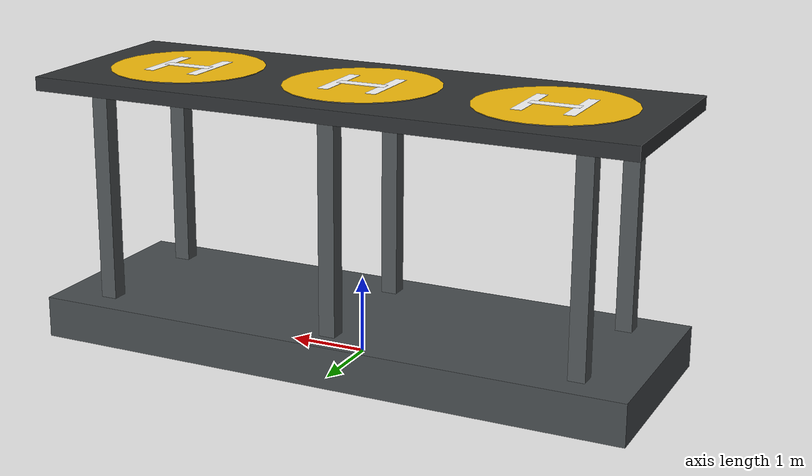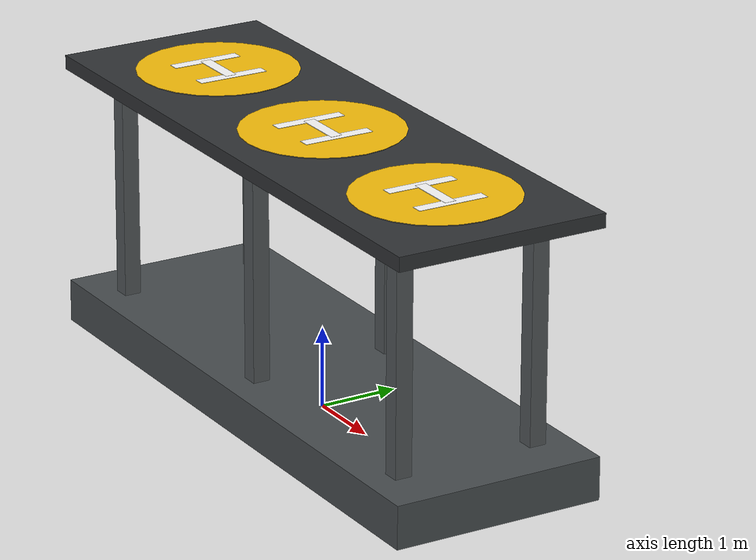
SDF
<?xml version='1.0' encoding='UTF-8'?>
<sdf version="1.10">
  <!-- Unity presentation geometry scale=0.18 -->
  <!-- Numeric visual source: SimulationBootstrap.BuildIslandUavBase. -->
  <model name="sim332_island_uav_base">
    <static>true</static>
    <link name="base_link">
      <collision name="foundation_collision">
        <pose>0 0 0.27 0 0 0</pose>
        <geometry>
          <box>
            <size>7.92 2.7 0.54</size>
          </box>
        </geometry>
      </collision>
      <visual name="foundation">
        <pose>0 0 0.27 0 0 0</pose>
        <geometry>
          <box>
            <size>7.92 2.7 0.54</size>
          </box>
        </geometry>
        <material>
          <ambient>.126 .135 .1395 1</ambient>
          <diffuse>.28 .30 .31 1</diffuse>
        </material>
      </visual>
      <collision name="deck_collision">
        <pose>0 0 3.42 0 0 0</pose>
        <geometry>
          <box>
            <size>7.92 2.7 0.18</size>
          </box>
        </geometry>
      </collision>
      <visual name="flight_deck">
        <pose>0 0 3.42 0 0 0</pose>
        <geometry>
          <box>
            <size>7.92 2.7 0.18</size>
          </box>
        </geometry>
        <material>
          <ambient>.0855 .09 .0945 1</ambient>
          <diffuse>.19 .20 .21 1</diffuse>
        </material>
      </visual>
      <collision name="column_01_collision">
        <pose>-3.24 -0.9 1.908 0 0 0</pose>
        <geometry>
          <box>
            <size>0.216 0.216 3.024</size>
          </box>
        </geometry>
      </collision>
      <collision name="column_02_collision">
        <pose>-3.24 0.9 1.908 0 0 0</pose>
        <geometry>
          <box>
            <size>0.216 0.216 3.024</size>
          </box>
        </geometry>
      </collision>
      <collision name="column_03_collision">
        <pose>0 -0.9 1.908 0 0 0</pose>
        <geometry>
          <box>
            <size>0.216 0.216 3.024</size>
          </box>
        </geometry>
      </collision>
      <collision name="column_04_collision">
        <pose>0 0.9 1.908 0 0 0</pose>
        <geometry>
          <box>
            <size>0.216 0.216 3.024</size>
          </box>
        </geometry>
      </collision>
      <collision name="column_05_collision">
        <pose>3.24 -0.9 1.908 0 0 0</pose>
        <geometry>
          <box>
            <size>0.216 0.216 3.024</size>
          </box>
        </geometry>
      </collision>
      <collision name="column_06_collision">
        <pose>3.24 0.9 1.908 0 0 0</pose>
        <geometry>
          <box>
            <size>0.216 0.216 3.024</size>
          </box>
        </geometry>
      </collision>
      <visual name="column_01">
        <pose>-3.24 -0.9 1.908 0 0 0</pose>
        <geometry>
          <box>
            <size>0.216 0.216 3.024</size>
          </box>
        </geometry>
        <material>
          <ambient>.144 .153 .1575 1</ambient>
          <diffuse>.32 .34 .35 1</diffuse>
        </material>
      </visual>
      <visual name="column_02">
        <pose>-3.24 0.9 1.908 0 0 0</pose>
        <geometry>
          <box>
            <size>0.216 0.216 3.024</size>
          </box>
        </geometry>
        <material>
          <ambient>.144 .153 .1575 1</ambient>
          <diffuse>.32 .34 .35 1</diffuse>
        </material>
      </visual>
      <visual name="column_03">
        <pose>0 -0.9 1.908 0 0 0</pose>
        <geometry>
          <box>
            <size>0.216 0.216 3.024</size>
          </box>
        </geometry>
        <material>
          <ambient>.144 .153 .1575 1</ambient>
          <diffuse>.32 .34 .35 1</diffuse>
        </material>
      </visual>
      <visual name="column_04">
        <pose>0 0.9 1.908 0 0 0</pose>
        <geometry>
          <box>
            <size>0.216 0.216 3.024</size>
          </box>
        </geometry>
        <material>
          <ambient>.144 .153 .1575 1</ambient>
          <diffuse>.32 .34 .35 1</diffuse>
        </material>
      </visual>
      <visual name="column_05">
        <pose>3.24 -0.9 1.908 0 0 0</pose>
        <geometry>
          <box>
            <size>0.216 0.216 3.024</size>
          </box>
        </geometry>
        <material>
          <ambient>.144 .153 .1575 1</ambient>
          <diffuse>.32 .34 .35 1</diffuse>
        </material>
      </visual>
      <visual name="column_06">
        <pose>3.24 0.9 1.908 0 0 0</pose>
        <geometry>
          <box>
            <size>0.216 0.216 3.024</size>
          </box>
        </geometry>
        <material>
          <ambient>.144 .153 .1575 1</ambient>
          <diffuse>.32 .34 .35 1</diffuse>
        </material>
      </visual>
      <collision name="pad_01_collision">
        <pose>-2.52 0 3.5172 0 0 0</pose>
        <geometry>
          <cylinder>
            <radius>0.99</radius>
            <length>0.0144</length>
          </cylinder>
        </geometry>
      </collision>
      <collision name="pad_02_collision">
        <pose>0 0 3.5172 0 0 0</pose>
        <geometry>
          <cylinder>
            <radius>0.99</radius>
            <length>0.0144</length>
          </cylinder>
        </geometry>
      </collision>
      <collision name="pad_03_collision">
        <pose>2.52 0 3.5172 0 0 0</pose>
        <geometry>
          <cylinder>
            <radius>0.99</radius>
            <length>0.0144</length>
          </cylinder>
        </geometry>
      </collision>
      <visual name="pad_01">
        <pose>-2.52 0 3.5172 0 0 0</pose>
        <geometry>
          <cylinder>
            <radius>0.99</radius>
            <length>0.0144</length>
          </cylinder>
        </geometry>
        <material>
          <ambient>.153 .1575 .1575 1</ambient>
          <diffuse>.34 .35 .35 1</diffuse>
        </material>
      </visual>
      <visual name="pad_02">
        <pose>0 0 3.5172 0 0 0</pose>
        <geometry>
          <cylinder>
            <radius>0.99</radius>
            <length>0.0144</length>
          </cylinder>
        </geometry>
        <material>
          <ambient>.153 .1575 .1575 1</ambient>
          <diffuse>.34 .35 .35 1</diffuse>
        </material>
      </visual>
      <visual name="pad_03">
        <pose>2.52 0 3.5172 0 0 0</pose>
        <geometry>
          <cylinder>
            <radius>0.99</radius>
            <length>0.0144</length>
          </cylinder>
        </geometry>
        <material>
          <ambient>.153 .1575 .1575 1</ambient>
          <diffuse>.34 .35 .35 1</diffuse>
        </material>
      </visual>
      <visual name="yellow_edge_01">
        <pose>-2.52 0 3.5262 0 0 0</pose>
        <geometry>
          <cylinder>
            <radius>1.008</radius>
            <length>0.0063</length>
          </cylinder>
        </geometry>
        <material>
          <ambient>.441 .3375 .018 1</ambient>
          <diffuse>.98 .75 .04 1</diffuse>
        </material>
      </visual>
      <visual name="yellow_edge_02">
        <pose>0 0 3.5262 0 0 0</pose>
        <geometry>
          <cylinder>
            <radius>1.008</radius>
            <length>0.0063</length>
          </cylinder>
        </geometry>
        <material>
          <ambient>.441 .3375 .018 1</ambient>
          <diffuse>.98 .75 .04 1</diffuse>
        </material>
      </visual>
      <visual name="yellow_edge_03">
        <pose>2.52 0 3.5262 0 0 0</pose>
        <geometry>
          <cylinder>
            <radius>1.008</radius>
            <length>0.0063</length>
          </cylinder>
        </geometry>
        <material>
          <ambient>.441 .3375 .018 1</ambient>
          <diffuse>.98 .75 .04 1</diffuse>
        </material>
      </visual>
      <visual name="h01_left">
        <pose>-2.844 0 3.528 0 0 0</pose>
        <geometry>
          <box>
            <size>0.144 0.9 0.0144</size>
          </box>
        </geometry>
        <material>
          <ambient>1 1 1 1</ambient>
          <diffuse>1 1 1 1</diffuse>
        </material>
      </visual>
      <visual name="h01_right">
        <pose>-2.196 0 3.528 0 0 0</pose>
        <geometry>
          <box>
            <size>0.144 0.9 0.0144</size>
          </box>
        </geometry>
        <material>
          <ambient>1 1 1 1</ambient>
          <diffuse>1 1 1 1</diffuse>
        </material>
      </visual>
      <visual name="h01_cross">
        <pose>-2.52 0 3.5298 0 0 0</pose>
        <geometry>
          <box>
            <size>0.648 0.144 0.0144</size>
          </box>
        </geometry>
        <material>
          <ambient>1 1 1 1</ambient>
          <diffuse>1 1 1 1</diffuse>
        </material>
      </visual>
      <visual name="h02_left">
        <pose>-0.324 0 3.528 0 0 0</pose>
        <geometry>
          <box>
            <size>0.144 0.9 0.0144</size>
          </box>
        </geometry>
        <material>
          <ambient>1 1 1 1</ambient>
          <diffuse>1 1 1 1</diffuse>
        </material>
      </visual>
      <visual name="h02_right">
        <pose>0.324 0 3.528 0 0 0</pose>
        <geometry>
          <box>
            <size>0.144 0.9 0.0144</size>
          </box>
        </geometry>
        <material>
          <ambient>1 1 1 1</ambient>
          <diffuse>1 1 1 1</diffuse>
        </material>
      </visual>
      <visual name="h02_cross">
        <pose>0 0 3.5298 0 0 0</pose>
        <geometry>
          <box>
            <size>0.648 0.144 0.0144</size>
          </box>
        </geometry>
        <material>
          <ambient>1 1 1 1</ambient>
          <diffuse>1 1 1 1</diffuse>
        </material>
      </visual>
      <visual name="h03_left">
        <pose>2.196 0 3.528 0 0 0</pose>
        <geometry>
          <box>
            <size>0.144 0.9 0.0144</size>
          </box>
        </geometry>
        <material>
          <ambient>1 1 1 1</ambient>
          <diffuse>1 1 1 1</diffuse>
        </material>
      </visual>
      <visual name="h03_right">
        <pose>2.844 0 3.528 0 0 0</pose>
        <geometry>
          <box>
            <size>0.144 0.9 0.0144</size>
          </box>
        </geometry>
        <material>
          <ambient>1 1 1 1</ambient>
          <diffuse>1 1 1 1</diffuse>
        </material>
      </visual>
      <visual name="h03_cross">
        <pose>2.52 0 3.5298 0 0 0</pose>
        <geometry>
          <box>
            <size>0.648 0.144 0.0144</size>
          </box>
        </geometry>
        <material>
          <ambient>1 1 1 1</ambient>
          <diffuse>1 1 1 1</diffuse>
        </material>
      </visual>
    </link>
  </model>
</sdf>
